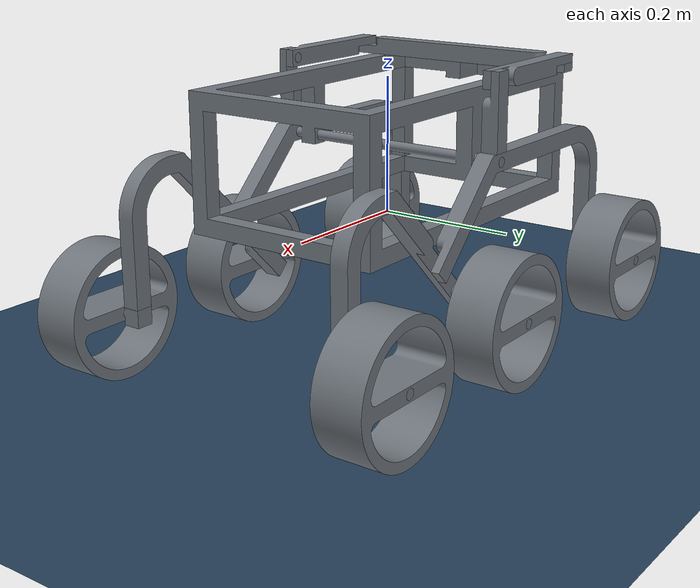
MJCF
<?xml version='1.0' encoding='utf-8'?>
<mujoco>
  <option integrator="implicitfast" timestep="0.002" solver="Newton" iterations="200" tolerance="1e-10" />
  <compiler meshdir="meshes" autolimits="true" inertiafromgeom="true" angle="radian" />
  <default>
    <joint damping="10.0" armature="1.0" />
    <geom conaffinity="0" condim="3" friction="1 0.5 0.5" margin="0" />
  </default>
  <asset>
    <texture type="skybox" builtin="gradient" rgb1="0.3 0.5 0.7" rgb2="0 0 0" width="512" height="3072" />
    <texture type="2d" name="groundplane" builtin="checker" mark="edge" rgb1="0.2 0.3 0.4" rgb2="0.1 0.2 0.3" markrgb="0.8 0.8 0.8" width="300" height="300" />
    <material name="groundplane" texture="groundplane" texuniform="true" texrepeat="5 5" reflectance="0.1" />
    <!--Part Meshes-->
    <mesh name="body" file="body.obj" scale="0.001 0.001 0.001" />
    <material name="body" rgba="0.4470588266849518 0.4745098054409027 0.501960813999176 1.0" shininess="0.8999999761581421" />
    <!--Part Meshes-->
    <mesh name="rocker_right_leg" file="rocker_right_leg.obj" scale="0.001 0.001 0.001" />
    <material name="rocker_right_leg" rgba="0.4470588266849518 0.4745098054409027 0.501960813999176 1.0" shininess="0.8999999761581421" />
    <!--Part Meshes-->
    <mesh name="rocker_left_leg" file="rocker_left_leg.obj" scale="0.001 0.001 0.001" />
    <material name="rocker_left_leg" rgba="0.4470588266849518 0.4745098054409027 0.501960813999176 1.0" shininess="0.8999999761581421" />
    <!--Part Meshes-->
    <mesh name="conn1_right" file="conn1_right.obj" scale="0.001 0.001 0.001" />
    <material name="conn1_right" rgba="0.4470588266849518 0.4745098054409027 0.501960813999176 1.0" shininess="0.8999999761581421" />
    <!--Part Meshes-->
    <mesh name="conn1_left" file="conn1_left.obj" scale="0.001 0.001 0.001" />
    <material name="conn1_left" rgba="0.4470588266849518 0.4745098054409027 0.501960813999176 1.0" shininess="0.8999999761581421" />
    <!--Part Meshes-->
    <mesh name="conn2_right" file="conn2_right.obj" scale="0.001 0.001 0.001" />
    <material name="conn2_right" rgba="0.4470588266849518 0.4745098054409027 0.501960813999176 1.0" shininess="0.8999999761581421" />
    <!--Part Meshes-->
    <mesh name="conn2_left" file="conn2_left.obj" scale="0.001 0.001 0.001" />
    <material name="conn2_left" rgba="0.4470588266849518 0.4745098054409027 0.501960813999176 1.0" shininess="0.8999999761581421" />
    <!--Part Meshes-->
    <mesh name="diff_beam" file="diff_beam.obj" scale="0.001 0.001 0.001" />
    <material name="diff_beam" rgba="0.4470588266849518 0.4745098054409027 0.501960813999176 1.0" shininess="0.8999999761581421" />
    <!--Part Meshes-->
    <mesh name="bogie_right_leg" file="bogie_right_leg.obj" scale="0.001 0.001 0.001" />
    <material name="bogie_right_leg" rgba="0.4470588266849518 0.4745098054409027 0.501960813999176 1.0" shininess="0.8999999761581421" />
    <!--Part Meshes-->
    <mesh name="bogie_left_leg" file="bogie_left_leg.obj" scale="0.001 0.001 0.001" />
    <material name="bogie_left_leg" rgba="0.4470588266849518 0.4745098054409027 0.501960813999176 1.0" shininess="0.8999999761581421" />
    <!--Part Meshes-->
    <mesh name="wheel_rotator_right_back" file="wheel_rotator_right_back.obj" scale="0.001 0.001 0.001" />
    <material name="wheel_rotator_right_back" rgba="0.4470588266849518 0.4745098054409027 0.501960813999176 1.0" shininess="0.8999999761581421" />
    <!--Part Meshes-->
    <mesh name="wheel_rotator_right_front" file="wheel_rotator_right_front.obj" scale="0.001 0.001 0.001" />
    <material name="wheel_rotator_right_front" rgba="0.4470588266849518 0.4745098054409027 0.501960813999176 1.0" shininess="0.8999999761581421" />
    <!--Part Meshes-->
    <mesh name="wheel_rotator_left_front" file="wheel_rotator_left_front.obj" scale="0.001 0.001 0.001" />
    <material name="wheel_rotator_left_front" rgba="0.4470588266849518 0.4745098054409027 0.501960813999176 1.0" shininess="0.8999999761581421" />
    <!--Part Meshes-->
    <mesh name="wheel_rotator_left_back" file="wheel_rotator_left_back.obj" scale="0.001 0.001 0.001" />
    <material name="wheel_rotator_left_back" rgba="0.4470588266849518 0.4745098054409027 0.501960813999176 1.0" shininess="0.8999999761581421" />
    <!--Part Meshes-->
    <mesh name="wheel_right_back" file="wheel_right_back.obj" scale="0.001 0.001 0.001" />
    <material name="wheel_right_back" rgba="0.4470588266849518 0.4745098054409027 0.501960813999176 1.0" shininess="0.8999999761581421" />
    <!--Part Meshes-->
    <mesh name="wheel_right_middle" file="wheel_right_middle.obj" scale="0.001 0.001 0.001" />
    <material name="wheel_right_middle" rgba="0.4470588266849518 0.4745098054409027 0.501960813999176 1.0" shininess="0.8999999761581421" />
    <!--Part Meshes-->
    <mesh name="wheel_right_front" file="wheel_right_front.obj" scale="0.001 0.001 0.001" />
    <material name="wheel_right_front" rgba="0.4470588266849518 0.4745098054409027 0.501960813999176 1.0" shininess="0.8999999761581421" />
    <!--Part Meshes-->
    <mesh name="wheel_left_back" file="wheel_left_back.obj" scale="0.001 0.001 0.001" />
    <material name="wheel_left_back" rgba="0.4470588266849518 0.4745098054409027 0.501960813999176 1.0" shininess="0.8999999761581421" />
    <!--Part Meshes-->
    <mesh name="wheel_left_middle" file="wheel_left_middle.obj" scale="0.001 0.001 0.001" />
    <material name="wheel_left_middle" rgba="0.4470588266849518 0.4745098054409027 0.501960813999176 1.0" shininess="0.8999999761581421" />
    <!--Part Meshes-->
    <mesh name="wheel_left_front" file="wheel_left_front.obj" scale="0.001 0.001 0.001" />
    <material name="wheel_left_front" rgba="0.4470588266849518 0.4745098054409027 0.501960813999176 1.0" shininess="0.8999999761581421" />
  </asset>
  <worldbody>
    <!--Lighting and floor-->
    <light diffuse=".8 .8 .8" pos="0 0 4" dir="0 0 -1" />
    <light diffuse=".6 .6 .6" pos="4 4 4" dir="-1 -1 -1" />
    <geom name="floor" pos="0 0 -0.2009999999999998" size="0 0 1" type="plane" material="groundplane" />
    <!--Assembly-->
    <body name="body" pos="0 0 0" quat="1.0 0.0 0.0 0.0">
      <geom type="mesh" name="body geom" mesh="body" material="body" contype="0" conaffinity="0" />
      <site name="body site" pos="-0.0 0.0 -0.0" quat="0.0 0.0 0.0 1.0" rgba="0 0 0 0" />
      <body name="rocker_right_leg" pos="0 0 0" quat="1.0 0.0 0.0 0.0">
        <geom type="mesh" name="rocker_right_leg geom" mesh="rocker_right_leg" material="rocker_right_leg" contype="0" conaffinity="0" />
        <site name="rocker_right_leg site" pos="7.726197315371666e-17 -1.8282806515611008e-16 -2.2132292553525e-16" quat="-7.155745187450983e-16 -3.863098657685826e-16 0.0 1.0" rgba="0 0 0 0" />
        <joint type="hinge" name="pass_left_rocker" pos="0.0 -0.18999999999999997 0.10000000000000002" axis="0.0 -1.0 2.220446049250313e-16" />
        <body name="conn1_right" pos="0 0 0" quat="1.0 0.0 0.0 0.0">
          <geom type="mesh" name="conn1_right geom" mesh="conn1_right" material="conn1_right" contype="0" conaffinity="0" />
          <site name="conn1_right site" pos="-9.226482981561053e-17 -1.4302806544378742e-16 -2.3903376955837814e-16" quat="-7.155745190051726e-16 -3.8630986576858223e-16 4.780789697963833e-16 1.0" rgba="0 0 0 0" />
          <joint type="hinge" name="pass_right_conn1" pos="-9.812270590521906e-18 -0.17729999999999996 0.11269999999999997" axis="-7.726197315371652e-16 1.4311490374901966e-15 1.0" />
        </body>
        <body name="bogie_right_leg" pos="0 0 0" quat="1.0 0.0 0.0 0.0">
          <geom type="mesh" name="bogie_right_leg geom" mesh="bogie_right_leg" material="bogie_right_leg" contype="0" conaffinity="0" />
          <site name="bogie_right_leg site" pos="8.637042776708681e-17 -1.893198882999263e-16 -2.1092621801186793e-16" quat="-9.376191236701296e-16 0.0 0.0 1.0" rgba="0 0 0 0" />
          <joint type="hinge" name="pass_right_rockerbogie" pos="0.13592266222324292 -0.1646000000000002 -0.018483174465507405" axis="8.659560562355051e-17 1.0 -2.2759572004815705e-15" />
          <body name="wheel_rotator_right_front" pos="0 0 0" quat="1.0 0.0 0.0 0.0">
            <geom type="mesh" name="wheel_rotator_right_front geom" mesh="wheel_rotator_right_front" material="wheel_rotator_right_front" contype="0" conaffinity="0" />
            <site name="wheel_rotator_right_front site" pos="0.6237453244466125 5.942060182143583e-17 -8.224522844369804e-18" quat="-9.376191236701296e-16 0.0 0.0 1.0" rgba="0 0 0 0" />
            <joint type="hinge" name="srv_right_front_rotator" pos="0.3364453244466123 -0.17730000000000032 -0.11269999999999977" axis="0.0 -1.9977029272549944e-15 -1.0" />
            <body name="wheel_right_front" pos="0 0 0" quat="1.0 0.0 0.0 0.0">
              <geom type="mesh" name="wheel_right_front geom" mesh="wheel_right_front" material="wheel_right_front" contype="0" conaffinity="0" />
              <site name="wheel_right_front site" pos="0.6237453244466122 -1.578385867140966e-17 4.429780223822254e-16" quat="-8.265968212076141e-16 -7.707523721847567e-16 0.0 1.0" rgba="0 0 0 0" />
              <joint type="hinge" name="drv_right_front_wheel" pos="0.33644532444661235 -0.2700000000000002 -0.09999999999999949" axis="-1.9721522630525295e-30 -1.0 2.0539125955565396e-15" />
            </body>
          </body>
          <body name="wheel_right_middle" pos="0 0 0" quat="1.0 0.0 0.0 0.0">
            <geom type="mesh" name="wheel_right_middle geom" mesh="wheel_right_middle" material="wheel_right_middle" contype="0" conaffinity="0" />
            <site name="wheel_right_middle site" pos="0.3417058366887592 -1.30819888248244e-16 -8.842031402607514e-15" quat="-9.376191236701296e-16 0.0 0.0 1.0" rgba="0 0 0 0" />
            <joint type="hinge" name="drv_right_middle_wheel" pos="0.05440583668875911 -0.2700000000000003 -0.10000000000000825" axis="0.0 -1.0 2.3869795029440866e-15" />
          </body>
        </body>
        <body name="wheel_rotator_right_back" pos="0 0 0" quat="1.0 0.0 0.0 0.0">
          <geom type="mesh" name="wheel_rotator_right_back geom" mesh="wheel_rotator_right_back" material="wheel_rotator_right_back" contype="0" conaffinity="0" />
          <site name="wheel_rotator_right_back site" pos="6.491004093495458e-17 -1.6010790976654713e-16 -2.240337285453354e-16" quat="-7.155745187450983e-16 -3.8630986576858253e-16 0.0 1.0" rgba="0 0 0 0" />
          <joint type="hinge" name="srv_right_back_rotator" pos="-0.28729999999999994 -0.1773000000000005 -0.11270000000000027" axis="7.726197315371652e-16 -1.553613717404932e-15 -1.0" />
          <body name="wheel_right_back" pos="0 0 0" quat="1.0 0.0 0.0 0.0">
            <geom type="mesh" name="wheel_right_back geom" mesh="wheel_right_back" material="wheel_right_back" contype="0" conaffinity="0" />
            <site name="wheel_right_back site" pos="1.4116684246030877e-16 -6.476895136190875e-17 -3.3842836082051287e-16" quat="-6.045522162825826e-16 0.0 0.0 1.0" rgba="0 0 0 0" />
            <joint type="hinge" name="drv_right_back_wheel" pos="-0.2872999999999999 -0.27000000000000024 -0.09999999999999992" axis="0.0 -1.0 1.7763568394002505e-15" />
          </body>
        </body>
      </body>
      <body name="rocker_left_leg" pos="0 0 0" quat="1.0 0.0 0.0 0.0">
        <geom type="mesh" name="rocker_left_leg geom" mesh="rocker_left_leg" material="rocker_left_leg" contype="0" conaffinity="0" />
        <site name="rocker_left_leg site" pos="1.9167241245858794e-17 7.000026476456348e-17 -7.356960720283828e-19" quat="0.0 0.0 0.0 1.0" rgba="0 0 0 0" />
        <joint type="hinge" name="pass_right_rocker" pos="0.0 0.19000000000000003 0.09999999999999992" axis="0.0 -1.0 2.220446049250313e-16" />
        <body name="conn1_left" pos="0 0 0" quat="1.0 0.0 0.0 0.0">
          <geom type="mesh" name="conn1_left geom" mesh="conn1_left" material="conn1_left" contype="0" conaffinity="0" />
          <site name="conn1_left site" pos="-7.377352525219327e-18 4.500267813573931e-18 -1.503569606906507e-17" quat="0.0 0.0 0.0 1.0" rgba="0 0 0 0" />
          <joint type="hinge" name="pass_left_conn1" pos="1.9167241245858794e-17 0.1773 0.11269999999999993" axis="0.0 -1.2246467991473532e-16 -1.0" />
        </body>
        <body name="bogie_left_leg" pos="0 0 0" quat="1.0 0.0 0.0 0.0">
          <geom type="mesh" name="bogie_left_leg geom" mesh="bogie_left_leg" material="bogie_left_leg" contype="0" conaffinity="0" />
          <site name="bogie_left_leg site" pos="-1.7601049802723487e-17 9.310434355070712e-17 -4.545467724370338e-17" quat="0.0 -3.790201999626894e-16 0.0 1.0" rgba="0 0 0 0" />
          <joint type="hinge" name="pass_left_rockerbogie" pos="0.1359226622232428 0.16460000000000002 -0.018483174465507467" axis="8.659560562354901e-17 1.0 4.440892098500626e-16" />
          <body name="wheel_rotator_left_front" pos="0 0 0" quat="1.0 0.0 0.0 0.0">
            <geom type="mesh" name="wheel_rotator_left_front geom" mesh="wheel_rotator_left_front" material="wheel_rotator_left_front" contype="0" conaffinity="0" />
            <site name="wheel_rotator_left_front site" pos="0.04914532444661175 1.52910236319365e-17 9.561646911610838e-17" quat="-3.7902019996268945e-16 2.8292768660732965e-16 1.0 2.9086327691241854e-16" rgba="0 0 0 0" />
            <joint type="hinge" name="srv_left_front_rotator" pos="0.3364453244466122 0.17729999999999996 -0.11269999999999987" axis="7.580403999253788e-16 -4.4339069329992415e-16 -1.0" />
            <body name="wheel_left_front" pos="0 0 0" quat="1.0 0.0 0.0 0.0">
              <geom type="mesh" name="wheel_left_front geom" mesh="wheel_left_front" material="wheel_left_front" contype="0" conaffinity="0" />
              <site name="wheel_left_front site" pos="0.04914532444661195 0.4679999999999998 -0.19999999999999976" quat="2.908632769124185e-16 1.0 -5.604834427636185e-16 -3.4825327770850875e-16" rgba="0 0 0 0" />
              <joint type="hinge" name="drv_left_front_wheel" pos="0.33644532444661207 0.2699999999999998 -0.09999999999999977" axis="-5.817265538248371e-16 -1.0 4.440892098500626e-16" />
            </body>
          </body>
          <body name="wheel_left_middle" pos="0 0 0" quat="1.0 0.0 0.0 0.0">
            <geom type="mesh" name="wheel_left_middle geom" mesh="wheel_left_middle" material="wheel_left_middle" contype="0" conaffinity="0" />
            <site name="wheel_left_middle site" pos="0.3417058366887589 0.4679999999999999 -8.640111535189077e-15" quat="0.0 0.0 0.0 1.0" rgba="0 0 0 0" />
            <joint type="hinge" name="drv_left_middle_wheel" pos="0.05440583668875899 0.26999999999999996 -0.10000000000000858" axis="0.0 -1.0 2.220446049250313e-16" />
          </body>
        </body>
        <body name="wheel_rotator_left_back" pos="0 0 0" quat="1.0 0.0 0.0 0.0">
          <geom type="mesh" name="wheel_rotator_left_back geom" mesh="wheel_rotator_left_back" material="wheel_rotator_left_back" contype="0" conaffinity="0" />
          <site name="wheel_rotator_left_back site" pos="-0.5746000000000004 1.3341425573199623e-17 1.8606340159442142e-17" quat="0.0 0.0 1.0 2.369757418392935e-16" rgba="0 0 0 0" />
          <joint type="hinge" name="srv_left_back_rotator" pos="-0.2873 0.17730000000000018 -0.11270000000000013" axis="5.804231674381205e-32 1.2246467991473532e-16 -1.0" />
          <body name="wheel_left_back" pos="0 0 0" quat="1.0 0.0 0.0 0.0">
            <geom type="mesh" name="wheel_left_back geom" mesh="wheel_left_back" material="wheel_left_back" contype="0" conaffinity="0" />
            <site name="wheel_left_back site" pos="-0.5746 0.4680000000000003 -0.19999999999999976" quat="2.3697574183929353e-16 1.0 0.0 -4.782261221546544e-16" rgba="0 0 0 0" />
            <joint type="hinge" name="drv_left_back_wheel" pos="-0.2873 0.27000000000000013 -0.10000000000000006" axis="-4.739514836785873e-16 -1.0 -2.220446049250313e-16" />
          </body>
        </body>
      </body>
      <body name="diff_beam" pos="0 0 0" quat="1.0 0.0 0.0 0.0">
        <geom type="mesh" name="diff_beam geom" mesh="diff_beam" material="diff_beam" contype="0" conaffinity="0" />
        <site name="diff_beam site" pos="9.137825860051809e-17 -1.0376656977338119e-16 -1.3876986865598834e-18" quat="0.0 0.0 0.0 1.0" rgba="0 0 0 0" />
        <joint type="hinge" name="pass_diff" pos="-0.18650000000000003 -6.318299999999999e-14 0.2" axis="0.0 0.0 1.0" />
        <body name="conn2_right" pos="0 0 0" quat="1.0 0.0 0.0 0.0">
          <geom type="mesh" name="conn2_right geom" mesh="conn2_right" material="conn2_right" contype="0" conaffinity="0" />
          <site name="conn2_right site" pos="-1.8633723069938156e-16 -7.67280654437869e-17 -2.962337695583786e-16" quat="-7.155745190051728e-16 0.0 4.780789697963833e-16 1.0" rgba="0 0 0 0" />
          <joint type="hinge" name="pass_right_diff_conn2" pos="-0.18649999999999997 -0.17729999999999996 0.20000000000000007" axis="-4.725604379196148e-31 -2.2134608837489314e-16 -1.0" />
        </body>
        <body name="conn2_left" pos="0 0 0" quat="1.0 0.0 0.0 0.0">
          <geom type="mesh" name="conn2_left geom" mesh="conn2_left" material="conn2_left" contype="0" conaffinity="0" />
          <site name="conn2_left site" pos="2.2217740999645282e-17 -1.0729973917181688e-16 -5.885740549946897e-17" quat="0.0 0.0 0.0 1.0" rgba="0 0 0 0" />
          <joint type="hinge" name="pass_left_diff_conn2" pos="-0.18649999999999997 0.17729999999999987 0.2" axis="0.0 0.0 1.0" />
        </body>
      </body>
    </body>
  </worldbody>
  <contact />
  <equality>
    <connect body1="conn1_right" body2="conn2_right" name="connect_hinge_pass_right_conns_1" anchor="-7.69174498565964e-17 -0.16459999999999975 0.21270000000000003" />
    <connect body1="conn1_right" body2="conn2_right" name="connect_hinge_pass_right_conns_2" anchor="-8.561307319628856e-17 -0.15459999999999974 0.2127" />
    <connect body1="conn1_left" body2="conn2_left" name="connect_hinge_pass_left_conns_1" anchor="1.5022647474780674e-17 0.16459999999999989 0.21270000000000003" />
    <connect body1="conn1_left" body2="conn2_left" name="connect_hinge_pass_left_conns_2" anchor="1.5888603531016166e-17 0.1745999999999999 0.21270000000000003" />
  </equality>
  <tendon />
  <actuator>
    <position name="pass_left_rocker" joint="pass_left_rocker" kp="100" />
    <position name="pass_right_rocker" joint="pass_right_rocker" kp="100" />
    <position name="pass_diff" joint="pass_diff" kp="100" />
    <position name="pass_right_conn1" joint="pass_right_conn1" kp="100" />
    <position name="pass_right_rockerbogie" joint="pass_right_rockerbogie" kp="100" />
    <position name="srv_right_back_rotator" joint="srv_right_back_rotator" kp="100" />
    <position name="pass_left_conn1" joint="pass_left_conn1" kp="100" />
    <position name="pass_left_rockerbogie" joint="pass_left_rockerbogie" kp="100" />
    <position name="srv_left_back_rotator" joint="srv_left_back_rotator" kp="100" />
    <position name="pass_right_diff_conn2" joint="pass_right_diff_conn2" kp="100" />
    <position name="pass_left_diff_conn2" joint="pass_left_diff_conn2" kp="100" />
    <position name="srv_right_front_rotator" joint="srv_right_front_rotator" kp="100" />
    <position name="drv_right_middle_wheel" joint="drv_right_middle_wheel" kp="100" />
    <position name="drv_right_back_wheel" joint="drv_right_back_wheel" kp="100" />
    <position name="srv_left_front_rotator" joint="srv_left_front_rotator" kp="100" />
    <position name="drv_left_middle_wheel" joint="drv_left_middle_wheel" kp="100" />
    <position name="drv_left_back_wheel" joint="drv_left_back_wheel" kp="100" />
    <position name="drv_right_front_wheel" joint="drv_right_front_wheel" kp="100" />
    <position name="drv_left_front_wheel" joint="drv_left_front_wheel" kp="100" />
  </actuator>
  <sensor>
    <jointpos name="pass_left_rocker_pos" joint="pass_left_rocker" />
    <jointpos name="pass_right_rocker_pos" joint="pass_right_rocker" />
    <jointpos name="pass_diff_pos" joint="pass_diff" />
    <jointpos name="pass_right_conn1_pos" joint="pass_right_conn1" />
    <jointpos name="pass_right_rockerbogie_pos" joint="pass_right_rockerbogie" />
    <jointpos name="srv_right_back_rotator_pos" joint="srv_right_back_rotator" />
    <jointpos name="pass_left_conn1_pos" joint="pass_left_conn1" />
    <jointpos name="pass_left_rockerbogie_pos" joint="pass_left_rockerbogie" />
    <jointpos name="srv_left_back_rotator_pos" joint="srv_left_back_rotator" />
    <jointpos name="pass_right_diff_conn2_pos" joint="pass_right_diff_conn2" />
    <jointpos name="pass_left_diff_conn2_pos" joint="pass_left_diff_conn2" />
    <jointpos name="srv_right_front_rotator_pos" joint="srv_right_front_rotator" />
    <jointpos name="drv_right_middle_wheel_pos" joint="drv_right_middle_wheel" />
    <jointpos name="drv_right_back_wheel_pos" joint="drv_right_back_wheel" />
    <jointpos name="srv_left_front_rotator_pos" joint="srv_left_front_rotator" />
    <jointpos name="drv_left_middle_wheel_pos" joint="drv_left_middle_wheel" />
    <jointpos name="drv_left_back_wheel_pos" joint="drv_left_back_wheel" />
    <jointpos name="drv_right_front_wheel_pos" joint="drv_right_front_wheel" />
    <jointpos name="drv_left_front_wheel_pos" joint="drv_left_front_wheel" />
  </sensor>
</mujoco>
